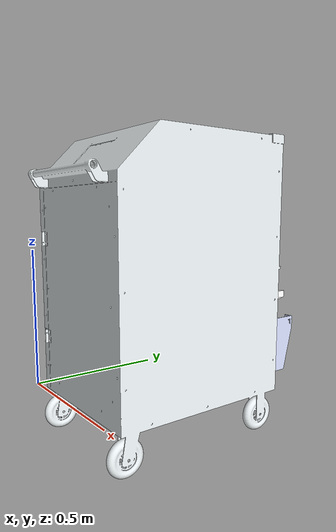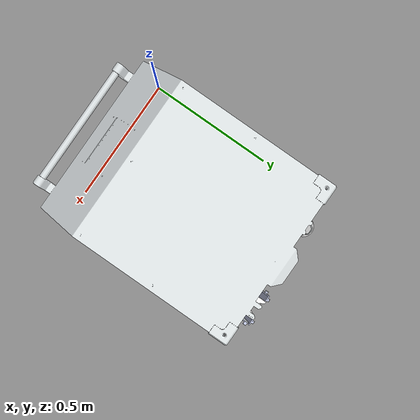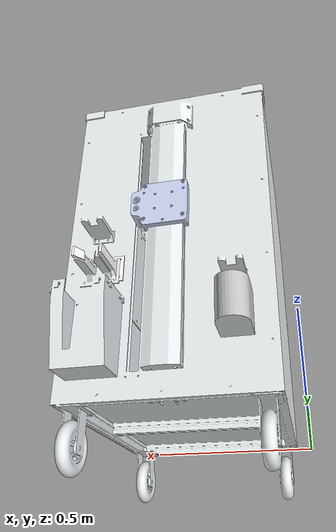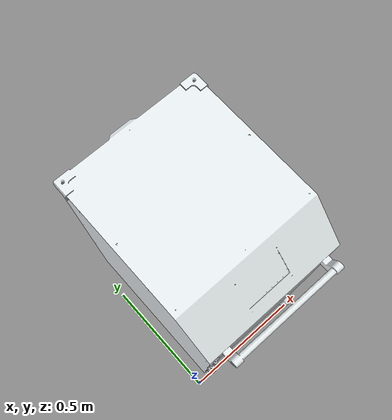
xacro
<?xml version="1.0" encoding="utf-8"?>
<robot xmlns:xacro="http://www.ros.org/wiki/xacro" name="abluo_urdf_1">
  <xacro:property name="width" value=".2" />
  <link name="base_link">
    <inertial>
      <origin xyz="0.314368340132374 0.377555022857893 0.400452017692568" rpy="0 0 0" />
      <mass value="30" />
      <inertia ixx="0.54665417885733" ixy="1.4238821137223E-07" ixz="-0.000131159040413172" iyy="0.46363983536376" iyz="-0.00931413578840215" izz="0.256005962598474" />
    </inertial>
    <visual>
      <origin xyz="0 0 0" rpy="0 0 0" />
      <geometry>
        <mesh filename="package://abluo_urdf_1/meshes/base_link.STL" />
      </geometry>
      <material name="">
        <color rgba="0.898039215686275 0.92156862745098 0.929411764705882 1" />
      </material>
    </visual>
    <collision>
      <origin xyz="0 0 0" rpy="0 0 0" />
      <geometry>
        <mesh filename="package://abluo_urdf_1/meshes/base_link.STL" />
      </geometry>
    </collision>
  </link>
  <link name="tool_holder">
    <inertial>
      <origin xyz="-5.4328E-05 0.035446 -0.00021215" rpy="0 0 0" />
      <mass value="0.1248" />
      <inertia ixx="0.0001414" ixy="-1.5081E-07" ixz="1.4383E-09" iyy="0.00012456" iyz="6.236E-07" izz="0.00022858" />
    </inertial>
    <visual>
      <origin xyz="0 0 0" rpy="0 0 0" />
      <geometry>
        <mesh filename="package://abluo_urdf_1/meshes/tool_holder.STL" />
      </geometry>
      <material name="">
        <color rgba="1 1 1 1" />
      </material>
    </visual>
    <collision>
      <origin xyz="0 0 0" rpy="0 0 0" />
      <geometry>
        <mesh filename="package://abluo_urdf_1/meshes/tool_holder.STL" />
      </geometry>
    </collision>
  </link>
  <joint name="tool_holder_to_trolley" type="fixed">
    <origin xyz="0.47032 0.67022 0.33281" rpy="0 0 0" />
    <parent link="base_link" />
    <child link="tool_holder" />
    <axis xyz="0 0 0" />
  </joint>
  <link name="bin">
    <inertial>
      <origin xyz="0.063 -0.071426 0.092008" rpy="0 0 0" />
      <mass value="0.26632" />
      <inertia ixx="0.0014744" ixy="8.8967E-19" ixz="4.6847E-18" iyy="0.0017467" iyz="-6.7797E-05" izz="0.0010769" />
    </inertial>
    <visual>
      <origin xyz="0 0 0" rpy="0 0 0" />
      <geometry>
        <mesh filename="package://abluo_urdf_1/meshes/bin.STL" />
      </geometry>
      <material name="">
        <color rgba="0.79216 0.81961 0.93333 1" />
      </material>
    </visual>
    <collision>
      <origin xyz="0 0 0" rpy="0 0 0" />
      <geometry>
        <mesh filename="package://abluo_urdf_1/meshes/bin.STL" />
      </geometry>
    </collision>
  </link>
  <joint name="bin_to_trolley" type="fixed">
    <origin xyz="0.41232 0.78622 0.051806" rpy="0 0 0" />
    <parent link="base_link" />
    <child link="bin" />
    <axis xyz="0 0 0" />
  </joint>
  <link name="refill">
    <inertial>
      <origin xyz="-0.099098 -0.032213 0.058669" rpy="0 0 0" />
      <mass value="0.48444" />
      <inertia ixx="0.00085088" ixy="1.1098E-17" ixz="1.6448E-18" iyy="0.00073833" iyz="3.4076E-05" izz="0.00065736" />
    </inertial>
    <visual>
      <origin xyz="0 0 0" rpy="0 0 0" />
      <geometry>
        <mesh filename="package://abluo_urdf_1/meshes/refill.STL" />
      </geometry>
      <material name="">
        <color rgba="0.75294 0.75294 0.75294 1" />
      </material>
    </visual>
    <collision>
      <origin xyz="0 0 0" rpy="0 0 0" />
      <geometry>
        <mesh filename="package://abluo_urdf_1/meshes/refill.STL" />
      </geometry>
    </collision>
  </link>
  <joint name="refill_to_trolley" type="fixed">
    <origin xyz="0.23641 0.73898 0.11878" rpy="0 0 0" />
    <parent link="base_link" />
    <child link="refill" />
    <axis xyz="0 0 0" />
  </joint>
  <link name="robot_arm_mount">
    <inertial>
      <origin xyz="0.01059 -0.0039437 -0.002491" rpy="0 0 0" />
      <mass value="0.42315" />
      <inertia ixx="0.00050278" ixy="6.7967E-05" ixz="-1.7444E-05" iyy="0.0011978" iyz="3.9255E-06" izz="0.00077881" />
    </inertial>
    <visual>
      <origin xyz="0 0 0" rpy="0 0 0" />
      <geometry>
        <mesh filename="package://abluo_urdf_1/meshes/robot_arm_mount.STL" />
      </geometry>
      <material name="">
        <color rgba="0.79216 0.81961 0.93333 1" />
      </material>
    </visual>
    <collision>
      <origin xyz="0 0 0" rpy="0 0 0" />
      <geometry>
        <mesh filename="package://abluo_urdf_1/meshes/robot_arm_mount.STL" />
      </geometry>
    </collision>
  </link>
  <joint name="robot_arm_mount_to_actuator" type="prismatic">
    <origin xyz="0.30617 0.70397 0.49087" rpy="0 0 0" />
    <parent link="base_link" />
    <child link="robot_arm_mount" />
    <axis xyz="0 0 1" />
    <limit lower="-0.2" upper="0.16" effort="100000" velocity="0.0235" />
  </joint>
</robot>
